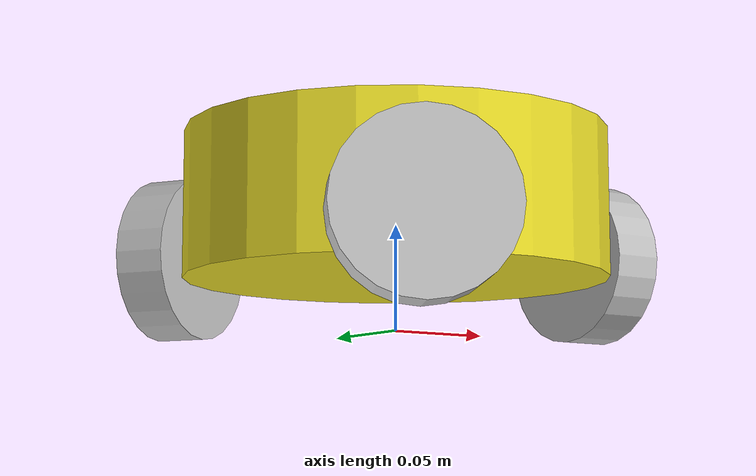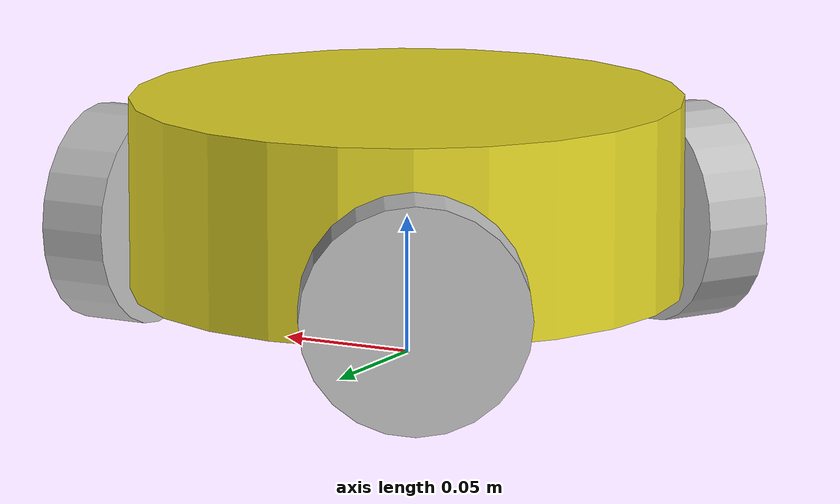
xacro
<?xml version="1.0"?>
<robot name="three_wheel_base" xmlns:xacro="http://www.ros.org/wiki/xacro">

    <material name="yellow">
        <color rgba="1 0.4 0 1"/>
    </material>
    <material name="black">
        <color rgba="0 0 0 0.95"/>
    </material>
    <material name="gray">
        <color rgba="0.75 0.75 0.75 1"/>
    </material>

    <xacro:macro name="cylinder_inertial_matrix" params="m r h">
        <inertial>
            <mass value="${m}" />
            <inertia ixx="${m*(3*r*r+h*h)/12}" ixy = "0" ixz = "0"
                iyy="${m*(3*r*r+h*h)/12}" iyz = "0"
                izz="${m*r*r/2}" />
        </inertial>
    </xacro:macro>

    <!-- PROPERTY LIST -->
    <xacro:property name="M_PI" value="3.1415926"/>

    <!-- base_link的质量、半径、高度 -->
    <xacro:property name="base_mass"   value="2" />
    <xacro:property name="base_radius"  value="0.1"/>
    <xacro:property name="base_height" value="0.07"/>
    <xacro:property name="bottom_to_floor" value="0.024"/>

    <!-- 三个轮子 -->
    <xacro:property name="wheel_mass"   value="0.1" />
    <xacro:property name="wheel_radius" value="0.04"/>
    <xacro:property name="wheel_width" value="0.025"/>
    <xacro:property name="wheel_offset" value="${base_radius+wheel_width/2+0.005}"/>
    <xacro:property name="wheel_z_offset" value="${-1*(bottom_to_floor+base_height/2-wheel_radius)}"/>

    <link name="base_footprint">
        <visual>
            <origin xyz="0 0 0" rpy="0 0 0" />
            <geometry>
                <box size="0.001 0.001 0.001" />
            </geometry>
        </visual>
    </link>
    <gazebo reference="base_footprint">
        <turnGravityOff>false</turnGravityOff>
    </gazebo>

    <joint name="base_footprint_joint" type="fixed">
        <origin xyz="0 0 ${bottom_to_floor+base_height/2}" rpy="0 0 0" />
        <parent link="base_footprint"/>
        <child link="base_link" />
    </joint>
    <!-- 底盘 -->

    <link name="base_link">
        <visual>
            <origin xyz=" 0 0 0" rpy="0 0 0" />
            <geometry>

                <cylinder radius="${base_radius}" length = "${base_height}"/>
            </geometry>

        </visual>
        <collision>
            <origin xyz=" 0 0 0" rpy="0 0 0" />
            <geometry>
                <cylinder radius="${base_radius}" length = "${base_height}"/>
            </geometry>
        </collision>
        <xacro:cylinder_inertial_matrix  m="${base_mass}" r="${base_radius}" h="${base_height}" />
    </link>

    <gazebo reference="base_link">
        <material>Gazebo/Yellow</material>

    </gazebo>

    <!-- 运动轮的宏 -->
    <xacro:macro name="wheel" params="prefix joint_offset_x joint_offset_y joint_offset_z link_pitch link_yaw axis_x axis_y axis_z">
        <joint name="${prefix}_joint" type="continuous">
            <origin xyz="${joint_offset_x} ${joint_offset_y} ${joint_offset_z}" rpy="0 0 0"/> <!-- 相对于 parent 坐标系，方向 parent -> child -->
            <parent link="base_link"/>
            <child link="${prefix}_link"/>
            <axis xyz="${axis_x} ${axis_y} ${axis_z}"/> <!-- 相对于轮子初始坐标系，向量方向由 parent -> child -->
        </joint>

        <link name="${prefix}_link">
            <visual>
                <origin xyz="0 0 0" rpy="${M_PI/2} ${link_pitch} ${link_yaw}" />
                <geometry>
                    <cylinder radius="${wheel_radius}" length = "${wheel_width}"/>
                </geometry>
                <material name="gray" />
            </visual>
            <collision>
                <origin xyz="0 0 0" rpy="${M_PI/2} ${link_pitch} ${link_yaw}" /> <!-- 相对于轮子初始坐标系 -->
                <geometry>
                    <cylinder radius="${wheel_radius}" length = "${wheel_width}"/>
                </geometry>
            </collision>
            <xacro:cylinder_inertial_matrix  m="${wheel_mass}" r="${wheel_radius}" h="${wheel_width}" />
        </link>

        <gazebo reference="${prefix}_link">
            <material>Gazebo/Gray</material>
            <mu1>100000.0</mu1>
            <mu2>100000.0</mu2>
        </gazebo>

        <transmission name="${prefix}_transmission">
            <type>transmission_interface/SimpleTransmission</type>
            <joint name="${prefix}_joint">
                <hardwareInterface>hardware_interface/VelocityJointInterface</hardwareInterface>
            </joint>
            <actuator name="${prefix}_motor">
                <hardwareInterface>hardware_interface/VelocityJointInterface</hardwareInterface>
                <mechanicalReduction>1</mechanicalReduction>
            </actuator>
        </transmission>

    </xacro:macro>

    <!-- wheel1：前方轮，旋转轴沿 Y -->
    <xacro:wheel prefix="wheel1"
        joint_offset_x="${wheel_offset}"
        joint_offset_y="0"
        joint_offset_z="${wheel_z_offset}"
        link_pitch="0"
        link_yaw="${M_PI/2}"
        axis_x="1" axis_y="0" axis_z="0" />

    <!-- wheel2：左后轮（120°） -->
    <xacro:wheel prefix="wheel2"
        joint_offset_x="${-wheel_offset/2}"
        joint_offset_y="${wheel_offset*sqrt(3)/2}"
        joint_offset_z="${wheel_z_offset}"
        link_pitch="0"
        link_yaw="${M_PI/6}"
        axis_x="-0.5" axis_y="${sqrt(3)/2}" axis_z="0" />

    <!-- wheel3：右后轮（-120°） -->
    <xacro:wheel prefix="wheel3"
        joint_offset_x="${-wheel_offset/2}"
        joint_offset_y="${-wheel_offset*sqrt(3)/2}"
        joint_offset_z="${wheel_z_offset}"
        link_pitch="0"
        link_yaw="${-M_PI/6}"
        axis_x="-0.5" axis_y="${-sqrt(3)/2}" axis_z="0" />

    <!-- Gazebo 插件 -->

    <ros2_control name="three_wheel_hw" type="system">
        <hardware>
            <plugin>gazebo_ros2_control/GazeboSystem</plugin>
        </hardware>

        <joint name="wheel1_joint">
            <command_interface name="velocity">
                <param name="min">-24.5</param>
                <param name="max">24.5</param>
            </command_interface>
            <state_interface name="position">
                <param name="initial_value">0.0</param>
            </state_interface>
            <state_interface name="velocity">
                <param name="initial_value">0.0</param>
            </state_interface>
        </joint>

        <joint name="wheel2_joint">
            <command_interface name="velocity">
                <param name="min">-24.5</param>
                <param name="max">24.5</param>
            </command_interface>
            <state_interface name="position">
                <param name="initial_value">0.0</param>
            </state_interface>
            <state_interface name="velocity">
                <param name="initial_value">0.0</param>
            </state_interface>
        </joint>

        <joint name="wheel3_joint">
            <command_interface name="velocity">
                <param name="min">-24.5</param>
                <param name="max">24.5</param>
            </command_interface>
            <state_interface name="position">
                <param name="initial_value">0.0</param>
            </state_interface>
            <state_interface name="velocity">
                <param name="initial_value">0.0</param>
            </state_interface>
        </joint>

    </ros2_control>

    <gazebo>
        <plugin name="gazebo_ros2_control" filename="libgazebo_ros2_control.so">
            <parameters>$(find myrobot_sim_gazebo)/config/my_robot_controllers.yaml</parameters>
        </plugin>
    </gazebo>

</robot>
